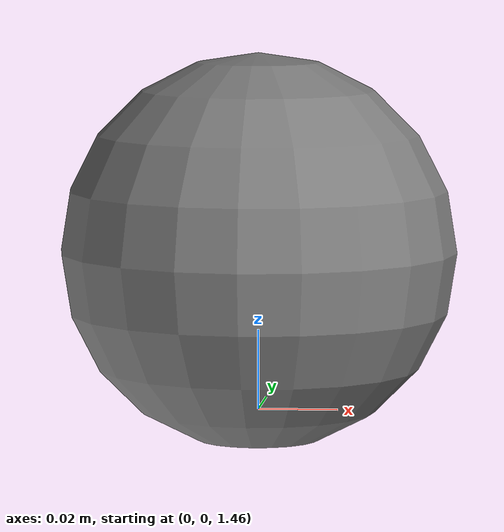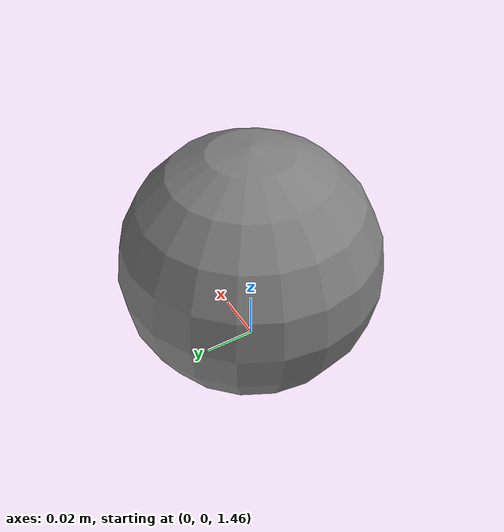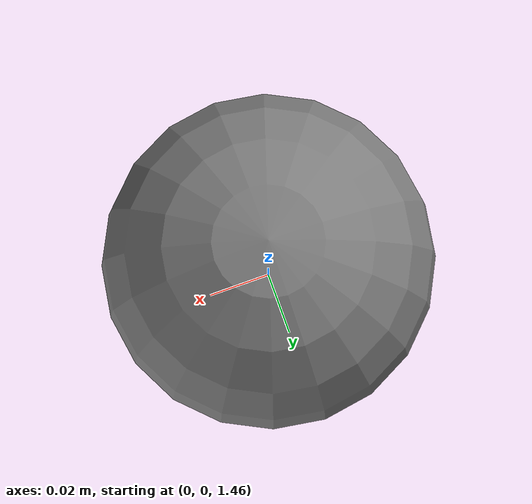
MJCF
<!-- Author: vikash@openai.com
     and modified by enddl22@gmail.com -->

<mujoco model='bouncingball'>
    <compiler inertiafromgeom='auto' angle='radian'/>
    <option timestep='0.002' iterations="50" solver="PGS" gravity="0 0 -9.81" density="1" viscosity="1e-5">
        <flag energy="enable"/>
    </option>
    <visual>
        <map fogstart="3" fogend="5" force="0.1" znear="0.1"/>
        <quality shadowsize="2048"/>
        <global offwidth="800" offheight="800"/>
    </visual>
    <asset>
        <texture type="skybox" builtin="gradient" width="128" height="128" rgb1=".4 .6 .8"
            rgb2="0 0 0"/>
        <texture name="texgeom" type="cube" builtin="flat" mark="cross" width="127" height="1278"
            rgb1="0.8 0.6 0.4" rgb2="0.8 0.6 0.4" markrgb="1 1 1" random="0.01"/>
        <texture name="texplane" type="2d" builtin="checker" rgb1=".2 .3 .4" rgb2=".1 0.15 0.2"
            width="512" height="512"/>
        <material name='MatPlane' reflectance='0.5' texture="texplane" texrepeat="1 1" texuniform="true"/>
        <material name='geom' texture="texgeom" texuniform="true"/>
    </asset>
    <worldbody>
      <light directional='true' diffuse='.8 .8 .8' specular='0.3 0.3 0.3' pos='0 0 4.0' dir='0 -.15 -1'/>
      <geom name='floor' pos='0 0 0' size='1 1 .125' type='plane'/>
      <body name='ball' pos='0 0 1.5'>
        <joint name="ball_joint" type="free" />
        <geom name='ball' size='.05' type='sphere' solref="0.02 -0.85" mass = "0.01"/>
        <!-- according to this comment http://www.mujoco.org/forum/index.php?threads/fully-elastic-collisions.3656/ -->
      </body>
    </worldbody>
</mujoco>
